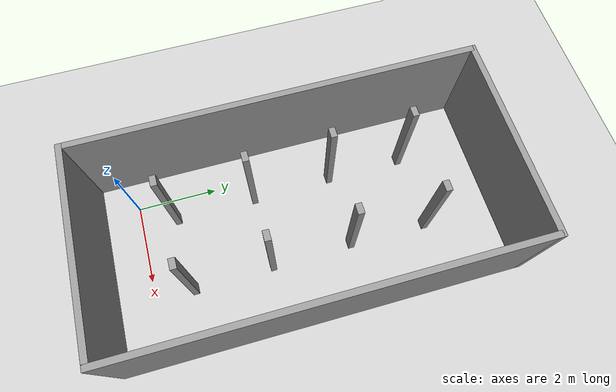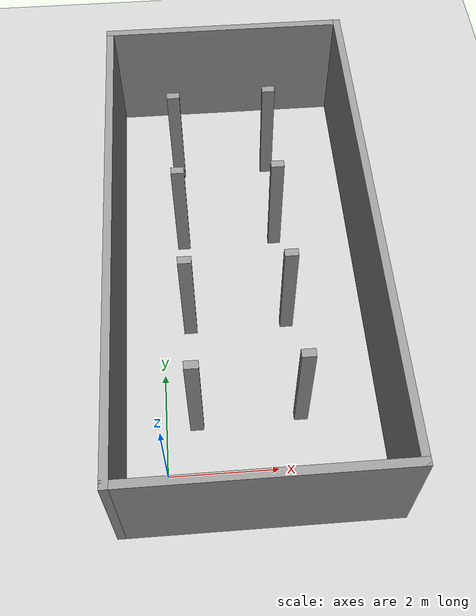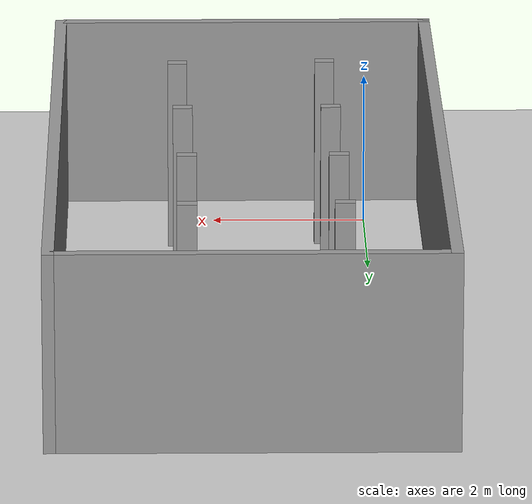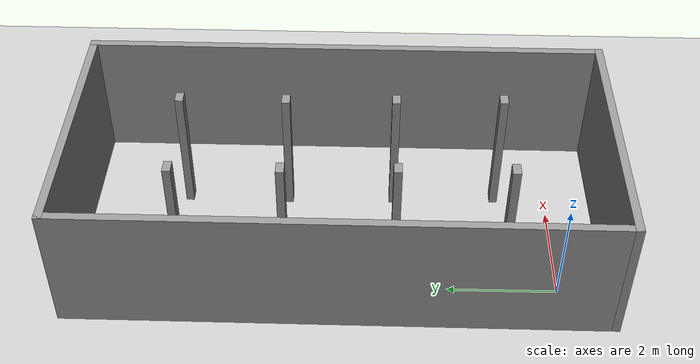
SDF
<sdf version="1.7">
 <world name="default">
  <light name="sun" type="directional">
   <pose>0 0 10 0 -0 0</pose>
   <diffuse>0.8 0.8 0.8 1</diffuse>
   <specular>0.2 0.2 0.2 1</specular>
   <attenuation>
    <range>1000</range>
    <constant>0.9</constant>
    <linear>0.01</linear>
    <quadratic>0.001</quadratic>
   </attenuation>
   <direction>-0.5 0.1 -0.9</direction>
   <spot><inner_angle>0</inner_angle><outer_angle>0</outer_angle><falloff>0</falloff></spot>
  </light>
  <model name="ground_plane">
   <static>1</static>
   <link name="link">
    <collision name="collision">
     <geometry><plane><normal>0 0 1</normal><size>100 100</size></plane></geometry>
     <surface>
      <contact><collide_bitmask>65535</collide_bitmask></contact>
      <friction><ode><mu>100</mu><mu2>50</mu2></ode></friction>
     </surface>
    </collision>
    <visual name="visual">
     <cast_shadows>0</cast_shadows>
     <geometry><plane><normal>0 0 1</normal><size>100 100</size></plane></geometry>
     <material>
      <script><uri>file://media/materials/scripts/gazebo.material</uri><name>Gazebo/Grey</name></script>
     </material>
    </visual>
   </link>
  </model>
  <gravity>0 0 -9.8</gravity>
  <magnetic_field>6e-06 2.3e-05 -4.2e-05</magnetic_field>
  <atmosphere type="adiabatic"/>
  <physics type="ode">
   <max_step_size>0.001</max_step_size>
   <real_time_factor>1</real_time_factor>
   <real_time_update_rate>1000</real_time_update_rate>
  </physics>
  <scene><ambient>0.4 0.4 0.4 1</ambient><background>0.7 0.7 0.7 1</background><shadows>1</shadows></scene>
  <spherical_coordinates>
   <surface_model>EARTH_WGS84</surface_model>
   <latitude_deg>0</latitude_deg>
   <longitude_deg>0</longitude_deg>
   <elevation>0</elevation>
   <heading_deg>0</heading_deg>
  </spherical_coordinates>
  <model name="pole">
   <pose>1.60303 3.97823 0 0 -0 0</pose>
   <link name="Wall_1">
    <collision name="Wall_1_Collision">
     <geometry><box><size>10 0.15 2.5</size></box></geometry>
     <pose>0 0 1.25 0 -0 0</pose>
    </collision>
    <visual name="Wall_1_Visual">
     <pose>0 0 1.25 0 -0 0</pose>
     <geometry><box><size>10 0.15 2.5</size></box></geometry>
     <material>
      <script><uri>file://media/materials/scripts/gazebo.material</uri><name>Gazebo/Grey</name></script>
      <ambient>1 1 1 1</ambient>
     </material>
     <meta><layer>0</layer></meta>
    </visual>
    <pose>2.425 0 0 0 -0 1.5708</pose>
   </link>
   <link name="Wall_11">
    <collision name="Wall_11_Collision">
     <geometry><box><size>0.25 0.15 2.5</size></box></geometry>
     <pose>0 0 1.25 0 -0 0</pose>
    </collision>
    <visual name="Wall_11_Visual">
     <pose>0 0 1.25 0 -0 0</pose>
     <geometry><box><size>0.25 0.15 2.5</size></box></geometry>
     <material>
      <script><uri>file://media/materials/scripts/gazebo.material</uri><name>Gazebo/Grey</name></script>
      <ambient>1 1 1 1</ambient>
     </material>
     <meta><layer>0</layer></meta>
    </visual>
    <pose>-1.13066 1.03079 0 0 -0 3.14159</pose>
   </link>
   <link name="Wall_13">
    <collision name="Wall_13_Collision">
     <geometry><box><size>0.25 0.15 2.5</size></box></geometry>
     <pose>0 0 1.25 0 -0 0</pose>
    </collision>
    <visual name="Wall_13_Visual">
     <pose>0 0 1.25 0 -0 0</pose>
     <geometry><box><size>0.25 0.15 2.5</size></box></geometry>
     <material>
      <script><uri>file://media/materials/scripts/gazebo.material</uri><name>Gazebo/Grey</name></script>
      <ambient>1 1 1 1</ambient>
     </material>
     <meta><layer>0</layer></meta>
    </visual>
    <pose>-1.15309 2.97885 0 0 -0 0</pose>
   </link>
   <link name="Wall_15">
    <collision name="Wall_15_Collision">
     <geometry><box><size>0.25 0.15 2.5</size></box></geometry>
     <pose>0 0 1.25 0 -0 0</pose>
    </collision>
    <visual name="Wall_15_Visual">
     <pose>0 0 1.25 0 -0 0</pose>
     <geometry><box><size>0.25 0.15 2.5</size></box></geometry>
     <material>
      <script><uri>file://media/materials/scripts/gazebo.material</uri><name>Gazebo/Grey</name></script>
      <ambient>1 1 1 1</ambient>
     </material>
     <meta><layer>0</layer></meta>
    </visual>
    <pose>0.877698 -2.97682 0 0 -0 0</pose>
   </link>
   <link name="Wall_17">
    <collision name="Wall_17_Collision">
     <geometry><box><size>0.25 0.15 2.5</size></box></geometry>
     <pose>0 0 1.25 0 -0 0</pose>
    </collision>
    <visual name="Wall_17_Visual">
     <pose>0 0 1.25 0 -0 0</pose>
     <geometry><box><size>0.25 0.15 2.5</size></box></geometry>
     <material>
      <script><uri>file://media/materials/scripts/gazebo.material</uri><name>Gazebo/Grey</name></script>
      <ambient>1 1 1 1</ambient>
     </material>
     <meta><layer>0</layer></meta>
    </visual>
    <pose>0.811044 -0.989067 0 0 -0 0</pose>
   </link>
   <link name="Wall_19">
    <collision name="Wall_19_Collision">
     <geometry><box><size>0.25 0.15 2.5</size></box></geometry>
     <pose>0 0 1.25 0 -0 0</pose>
    </collision>
    <visual name="Wall_19_Visual">
     <pose>0 0 1.25 0 -0 0</pose>
     <geometry><box><size>0.25 0.15 2.5</size></box></geometry>
     <material>
      <script><uri>file://media/materials/scripts/gazebo.material</uri><name>Gazebo/Grey</name></script>
      <ambient>1 1 1 1</ambient>
     </material>
     <meta><layer>0</layer></meta>
    </visual>
    <pose>0.765418 1.0489 0 0 -0 0</pose>
   </link>
   <link name="Wall_2">
    <collision name="Wall_2_Collision">
     <geometry><box><size>5 0.15 2.5</size></box></geometry>
     <pose>0 0 1.25 0 -0 0</pose>
    </collision>
    <visual name="Wall_2_Visual">
     <pose>0 0 1.25 0 -0 0</pose>
     <geometry><box><size>5 0.15 2.5</size></box></geometry>
     <material>
      <script><uri>file://media/materials/scripts/gazebo.material</uri><name>Gazebo/Grey</name></script>
      <ambient>1 1 1 1</ambient>
     </material>
     <meta><layer>0</layer></meta>
    </visual>
    <pose>-0 4.925 0 0 -0 3.14159</pose>
   </link>
   <link name="Wall_21">
    <collision name="Wall_21_Collision">
     <geometry><box><size>0.25 0.15 2.5</size></box></geometry>
     <pose>0 0 1.25 0 -0 0</pose>
    </collision>
    <visual name="Wall_21_Visual">
     <pose>0 0 1.25 0 -0 0</pose>
     <geometry><box><size>0.25 0.15 2.5</size></box></geometry>
     <material>
      <script><uri>file://media/materials/scripts/gazebo.material</uri><name>Gazebo/Grey</name></script>
      <ambient>1 1 1 1</ambient>
     </material>
     <meta><layer>0</layer></meta>
    </visual>
    <pose>0.771063 3.02442 0 0 -0 0</pose>
   </link>
   <link name="Wall_4">
    <collision name="Wall_4_Collision">
     <geometry><box><size>5 0.15 2.5</size></box></geometry>
     <pose>0 0 1.25 0 -0 0</pose>
    </collision>
    <visual name="Wall_4_Visual">
     <pose>0 0 1.25 0 -0 0</pose>
     <geometry><box><size>5 0.15 2.5</size></box></geometry>
     <material>
      <script><uri>file://media/materials/scripts/gazebo.material</uri><name>Gazebo/Grey</name></script>
      <ambient>1 1 1 1</ambient>
     </material>
     <meta><layer>0</layer></meta>
    </visual>
    <pose>-0 -4.925 0 0 -0 3.14159</pose>
   </link>
   <link name="Wall_5">
    <collision name="Wall_5_Collision">
     <geometry><box><size>10 0.15 2.5</size></box></geometry>
     <pose>0 0 1.25 0 -0 0</pose>
    </collision>
    <visual name="Wall_5_Visual">
     <pose>0 0 1.25 0 -0 0</pose>
     <geometry><box><size>10 0.15 2.5</size></box></geometry>
     <material>
      <script><uri>file://media/materials/scripts/gazebo.material</uri><name>Gazebo/Grey</name></script>
      <ambient>1 1 1 1</ambient>
     </material>
     <meta><layer>0</layer></meta>
    </visual>
    <pose>-2.425 0 0 0 -0 1.5708</pose>
   </link>
   <link name="Wall_7">
    <collision name="Wall_7_Collision">
     <geometry><box><size>0.25 0.15 2.5</size></box></geometry>
     <pose>0 0 1.25 0 -0 0</pose>
    </collision>
    <visual name="Wall_7_Visual">
     <pose>0 0 1.25 0 -0 0</pose>
     <geometry><box><size>0.25 0.15 2.5</size></box></geometry>
     <material>
      <script><uri>file://media/materials/scripts/gazebo.material</uri><name>Gazebo/Grey</name></script>
      <ambient>1 1 1 1</ambient>
     </material>
     <meta><layer>0</layer></meta>
    </visual>
    <pose>-1.04733 -3.04731 0 0 -0 3.14159</pose>
   </link>
   <link name="Wall_9">
    <collision name="Wall_9_Collision">
     <geometry><box><size>0.25 0.15 2.5</size></box></geometry>
     <pose>0 0 1.25 0 -0 0</pose>
    </collision>
    <visual name="Wall_9_Visual">
     <pose>0 0 1.25 0 -0 0</pose>
     <geometry><box><size>0.25 0.15 2.5</size></box></geometry>
     <material>
      <script><uri>file://media/materials/scripts/gazebo.material</uri><name>Gazebo/Grey</name></script>
      <ambient>1 1 1 1</ambient>
     </material>
     <meta><layer>0</layer></meta>
    </visual>
    <pose>-1.07775 -1.00934 0 0 -0 3.14159</pose>
   </link>
   <static>1</static>
  </model>
 </world>
</sdf>
